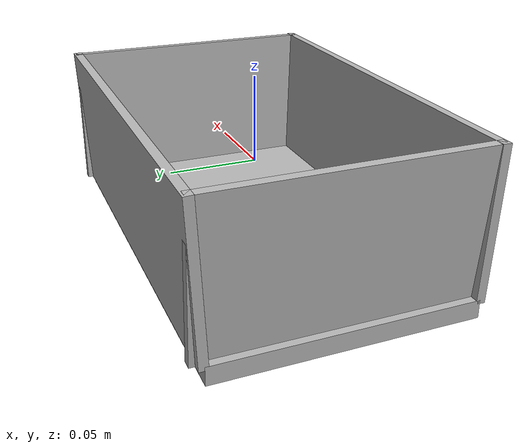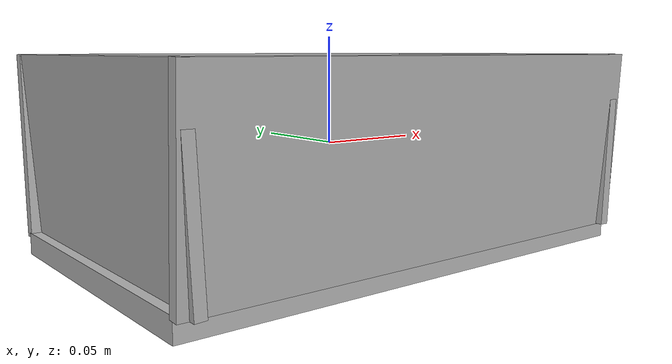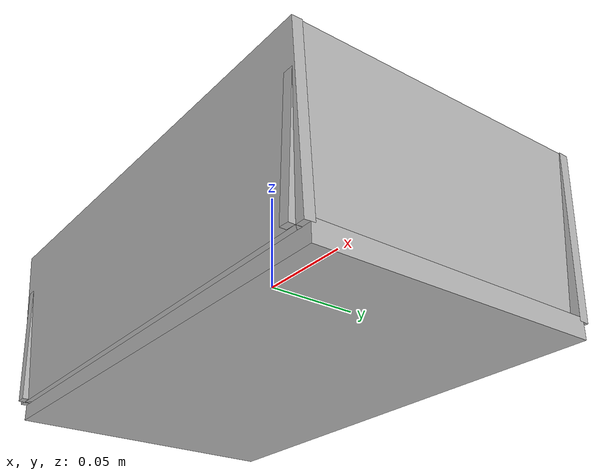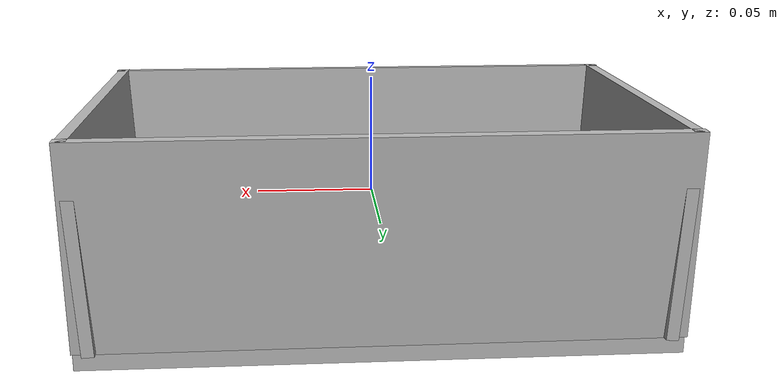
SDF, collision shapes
<?xml version="1.0" ?>
<!-- |    This document was autogenerated by xacro from container_amuse_body_large_yellow.sdf.xacro | -->
<!-- |    EDITING THIS FILE BY HAND IS NOT RECOMMENDED                                 | -->
<sdf version="1.6" xmlns:drake="drake.mit.edu">
  <model name="container_amuse_body_yellow">
    <link name="container_amuse_body_yellow">
      <pose>0 0 0 0 0 0</pose>
      <inertial>
        <pose>0 0 -0.0124 0 0 0</pose>
        <mass>0.0755</mass>
        <inertia>
          <ixx> 0.000310</ixx>
          <ixy> 0.000000</ixy>
          <ixz> 0.000000</ixz>
          <iyy> 0.000585</iyy>
          <iyz> 0.000000</iyz>
          <izz> 0.000762</izz>
        </inertia>
      </inertial>
      <visual name="container_amuse_body_yellow">
        <!-- The orientation of the object in the glTF is not upright,
        so we must rotate by 90 degress here to make it so. -->
        <pose>0 0 0 -1.5708 0 0</pose>
        <geometry>
          <mesh>
            <uri>/data/kylehatch/lbm_eval/lbm_eval_models/kitchen_accessories/bins/assets/container_amuse_body_yellow.gltf</uri>
            <scale>1.0 1.0 1.0</scale>
          </mesh>
        </geometry>
      </visual>
      <!-- Left wall collision -->
      <collision name="container_amuse_body_yellow_left_wall">
        <pose>-0.115 0 0 0 -0.05 0</pose>
        <geometry>
          <box>
            <size>0.005 0.155 0.084</size>
          </box>
        </geometry>
        <drake:proximity_properties>
          <drake:mu_dynamic>0.3</drake:mu_dynamic>
          <drake:mu_static>0.3</drake:mu_static>
          <drake:hydroelastic_modulus>1e7</drake:hydroelastic_modulus>
          <drake:hunt_crossley_dissipation>40</drake:hunt_crossley_dissipation>
          <drake:compliant_hydroelastic/>
        </drake:proximity_properties>
      </collision>
      <!-- Right wall collision -->
      <collision name="container_amuse_body_yellow_right_wall">
        <pose>0.115 0 0 0 0.05 0</pose>
        <geometry>
          <box>
            <size>0.005 0.155 0.084</size>
          </box>
        </geometry>
        <drake:proximity_properties>
          <drake:mu_dynamic>0.3</drake:mu_dynamic>
          <drake:mu_static>0.3</drake:mu_static>
          <drake:hydroelastic_modulus>1e7</drake:hydroelastic_modulus>
          <drake:hunt_crossley_dissipation>40</drake:hunt_crossley_dissipation>
          <drake:compliant_hydroelastic/>
        </drake:proximity_properties>
      </collision>
      <!-- Bottom Wall collision -->
      <collision name="container_amuse_body_yellow_bottom_wall">
        <pose>0 0.074 0 -0.05 0 0</pose>
        <geometry>
          <box>
            <size>0.24 0.005 0.084</size>
          </box>
        </geometry>
        <drake:proximity_properties>
          <drake:mu_dynamic>0.3</drake:mu_dynamic>
          <drake:mu_static>0.3</drake:mu_static>
          <drake:hydroelastic_modulus>1e7</drake:hydroelastic_modulus>
          <drake:hunt_crossley_dissipation>40</drake:hunt_crossley_dissipation>
          <drake:compliant_hydroelastic/>
        </drake:proximity_properties>
      </collision>
      <!-- Top wall collision -->
      <collision name="container_amuse_body_yellow_top_wall">
        <pose>0 -0.074 0 0.05 0 0</pose>
        <geometry>
          <box>
            <size>0.24 0.005 0.084</size>
          </box>
        </geometry>
        <drake:proximity_properties>
          <drake:mu_dynamic>0.3</drake:mu_dynamic>
          <drake:mu_static>0.3</drake:mu_static>
          <drake:hydroelastic_modulus>1e7</drake:hydroelastic_modulus>
          <drake:hunt_crossley_dissipation>40</drake:hunt_crossley_dissipation>
          <drake:compliant_hydroelastic/>
        </drake:proximity_properties>
      </collision>
      <!-- Floor collision -->
      <collision name="container_amuse_body_yellow_floor">
        <pose>0 0 -0.045 0 0 0</pose>
        <geometry>
          <box>
            <size>0.24 0.142927 0.01</size>
          </box>
        </geometry>
        <drake:proximity_properties>
          <drake:mu_dynamic>0.3</drake:mu_dynamic>
          <drake:mu_static>0.3</drake:mu_static>
          <drake:hydroelastic_modulus>1e7</drake:hydroelastic_modulus>
          <drake:hunt_crossley_dissipation>40</drake:hunt_crossley_dissipation>
          <drake:compliant_hydroelastic/>
        </drake:proximity_properties>
      </collision>
    </link>
    <frame name="origin">
      <pose relative_to="container_amuse_body_yellow">0 0 0 0 0 0</pose>
    </frame>
    <!-- This is the bounding box center of the visual mesh, not the collision
         geometry -->
    <frame name="bounding_box_center__z_up__x_orthogonal_to_shorter_face">
      <pose relative_to="container_amuse_body_yellow">0 0 0 0 0 0</pose>
    </frame>
    <frame name="bottom">
      <pose relative_to="container_amuse_body_yellow">0 0 -0.05 0 0 0</pose>
    </frame>
    <frame name="center">
      <pose relative_to="container_amuse_body_yellow">0 0 0 0 0 0</pose>
    </frame>
    <frame name="at_rest_right_side_up">
      <pose relative_to="container_amuse_body_yellow">0 0 -0.05 0 0 0</pose>
    </frame>
  </model>
</sdf>
